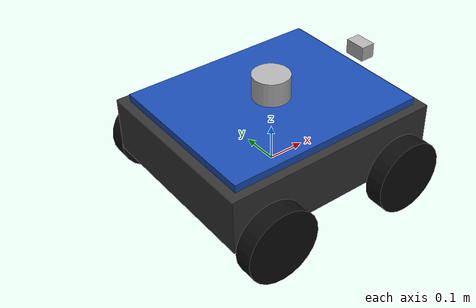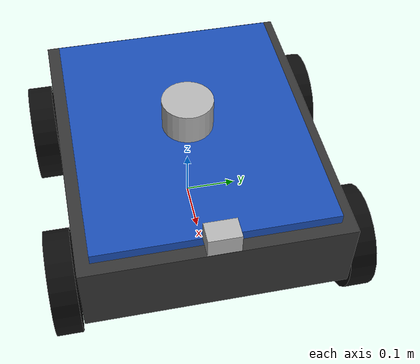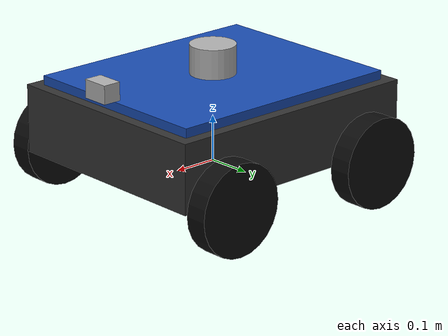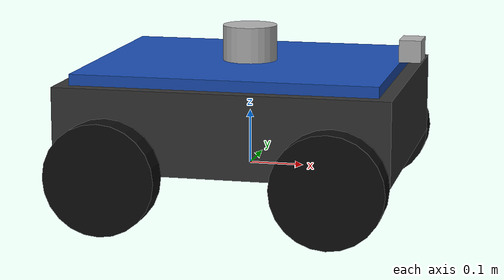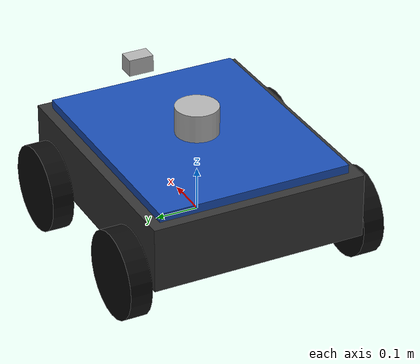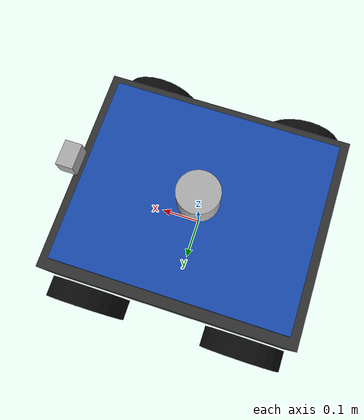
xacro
<?xml version="1.0"?>
<robot name="solar_agri_robot" xmlns:xacro="http://www.ros.org/wiki/xacro">

  <!-- ===== Robot Properties ===== -->
  <xacro:property name="base_length"  value="0.6" />
  <xacro:property name="base_width"   value="0.5" />
  <xacro:property name="base_height"  value="0.15" />
  <xacro:property name="wheel_radius" value="0.1" />
  <xacro:property name="wheel_width"  value="0.05" />
  <xacro:property name="wheel_x_off"  value="0.2" />
  <xacro:property name="wheel_y_off"  value="0.28" />
  <xacro:property name="wheel_base"   value="${2 * wheel_y_off}" />

  <!-- ===== Materials ===== -->
  <material name="dark_grey">
    <color rgba="0.2 0.2 0.2 1.0"/>
  </material>
  <material name="solar_blue">
    <color rgba="0.1 0.3 0.7 1.0"/>
  </material>
  <material name="rubber_black">
    <color rgba="0.05 0.05 0.05 1.0"/>
  </material>
  <material name="metal_silver">
    <color rgba="0.7 0.7 0.7 1.0"/>
  </material>

  <!-- ===== Base Link ===== -->
  <link name="base_footprint"/>

  <joint name="base_footprint_joint" type="fixed">
    <parent link="base_footprint"/>
    <child  link="base_link"/>
    <origin xyz="0 0 ${wheel_radius}" rpy="0 0 0"/>
  </joint>

  <link name="base_link">
    <visual>
      <geometry>
        <box size="${base_length} ${base_width} ${base_height}"/>
      </geometry>
      <material name="dark_grey"/>
    </visual>
    <collision>
      <geometry>
        <box size="${base_length} ${base_width} ${base_height}"/>
      </geometry>
    </collision>
    <inertial>
      <mass value="15.0"/>
      <inertia ixx="0.1" ixy="0.0" ixz="0.0"
               iyy="0.1" iyz="0.0" izz="0.2"/>
    </inertial>
  </link>

  <!-- ===== Solar Panel ===== -->
  <joint name="solar_panel_joint" type="fixed">
    <parent link="base_link"/>
    <child  link="solar_panel_link"/>
    <origin xyz="0 0 ${base_height/2 + 0.01}" rpy="0 0 0"/>
  </joint>

  <link name="solar_panel_link">
    <visual>
      <geometry>
        <box size="${base_length - 0.05} ${base_width - 0.05} 0.02"/>
      </geometry>
      <material name="solar_blue"/>
    </visual>
    <collision>
      <geometry>
        <box size="${base_length - 0.05} ${base_width - 0.05} 0.02"/>
      </geometry>
    </collision>
    <inertial>
      <mass value="2.0"/>
      <inertia ixx="0.05" ixy="0.0" ixz="0.0"
               iyy="0.05" iyz="0.0" izz="0.05"/>
    </inertial>
  </link>

  <!-- ===== Wheel Macro ===== -->
  <xacro:macro name="wheel" params="name x_off y_off">
    <joint name="${name}_joint" type="continuous">
      <parent link="base_link"/>
      <child  link="${name}_link"/>
      <origin xyz="${x_off} ${y_off} ${-base_height/2}" rpy="${pi/2} 0 0"/>
      <axis xyz="0 0 -1"/>
    </joint>
    <link name="${name}_link">
      <visual>
        <geometry>
          <cylinder radius="${wheel_radius}" length="${wheel_width}"/>
        </geometry>
        <material name="rubber_black"/>
      </visual>
      <collision>
        <geometry>
          <cylinder radius="${wheel_radius}" length="${wheel_width}"/>
        </geometry>
      </collision>
      <inertial>
        <mass value="1.0"/>
        <inertia ixx="0.01" ixy="0.0" ixz="0.0"
                 iyy="0.01" iyz="0.0" izz="0.02"/>
      </inertial>
    </link>
  </xacro:macro>

  <xacro:wheel name="front_left_wheel"  x_off=" ${wheel_x_off}" y_off=" ${wheel_y_off}"/>
  <xacro:wheel name="front_right_wheel" x_off=" ${wheel_x_off}" y_off="-${wheel_y_off}"/>
  <xacro:wheel name="rear_left_wheel"   x_off="-${wheel_x_off}" y_off=" ${wheel_y_off}"/>
  <xacro:wheel name="rear_right_wheel"  x_off="-${wheel_x_off}" y_off="-${wheel_y_off}"/>

  <!-- ===== Camera Link ===== -->
  <joint name="camera_joint" type="fixed">
    <parent link="base_link"/>
    <child  link="camera_link"/>
    <origin xyz="${base_length/2} 0 ${base_height/2 + 0.05}" rpy="0 0 0"/>
  </joint>

  <link name="camera_link">
    <visual>
      <geometry>
        <box size="0.04 0.06 0.04"/>
      </geometry>
      <material name="metal_silver"/>
    </visual>
    <inertial>
      <mass value="0.1"/>
      <inertia ixx="0.001" ixy="0.0" ixz="0.0"
               iyy="0.001" iyz="0.0" izz="0.001"/>
    </inertial>
  </link>

  <joint name="camera_optical_joint" type="fixed">
    <parent link="camera_link"/>
    <child  link="camera_optical_frame"/>
    <origin xyz="0 0 0" rpy="${-pi/2} 0 ${-pi/2}"/>
  </joint>

  <link name="camera_optical_frame"/>

  <!-- ===== LiDAR Link ===== -->
  <joint name="lidar_joint" type="fixed">
    <parent link="base_link"/>
    <child  link="lidar_link"/>
    <origin xyz="0 0 ${base_height/2 + 0.05}" rpy="0 0 0"/>
  </joint>

  <link name="lidar_link">
    <visual>
      <geometry>
        <cylinder radius="0.05" length="0.07"/>
      </geometry>
      <material name="metal_silver"/>
    </visual>
    <inertial>
      <mass value="0.3"/>
      <inertia ixx="0.001" ixy="0.0" ixz="0.0"
               iyy="0.001" iyz="0.0" izz="0.001"/>
    </inertial>
  </link>

  <!-- ===== IMU Link ===== -->
  <joint name="imu_joint" type="fixed">
    <parent link="base_link"/>
    <child  link="imu_link"/>
    <origin xyz="0 0 0" rpy="0 0 0"/>
  </joint>

  <link name="imu_link"/>

  <!-- ===== Gazebo Simulation Extensions ===== -->
  <!-- Colors/Friction -->
  <gazebo reference="base_link">
    <material>Gazebo/DarkGrey</material>
  </gazebo>
  <gazebo reference="solar_panel_link">
    <material>Gazebo/Blue</material>
  </gazebo>

  <xacro:macro name="gazebo_wheel" params="name">
    <gazebo reference="${name}_link">
      <material>Gazebo/FlatBlack</material>
      <mu1>1.0</mu1>
      <mu2>1.0</mu2>
      <kp>10000000.0</kp>
      <kd>1.0</kd>
    </gazebo>
  </xacro:macro>

  <xacro:gazebo_wheel name="front_left_wheel"/>
  <xacro:gazebo_wheel name="front_right_wheel"/>
  <xacro:gazebo_wheel name="rear_left_wheel"/>
  <xacro:gazebo_wheel name="rear_right_wheel"/>

  <!-- Differential Drive Plugin (Skid Steer for 4 wheels) -->
  <gazebo>
    <plugin name="skid_steer_drive" filename="libgazebo_ros_diff_drive.so">
      <ros>
        <namespace>/</namespace>
        <remapping>cmd_vel:=cmd_vel</remapping>
        <remapping>odom:=odom</remapping>
      </ros>

      <!-- Kinematics -->
      <num_wheel_pairs>2</num_wheel_pairs>
      <left_joint>front_left_wheel_joint</left_joint>
      <right_joint>front_right_wheel_joint</right_joint>
      <left_joint>rear_left_wheel_joint</left_joint>
      <right_joint>rear_right_wheel_joint</right_joint>
      <wheel_separation>${wheel_base}</wheel_separation>
      <wheel_diameter>${2 * wheel_radius}</wheel_diameter>

      <!-- Limits -->
      <max_wheel_torque>20</max_wheel_torque>
      <max_wheel_acceleration>1.0</max_wheel_acceleration>

      <!-- Output -->
      <publish_odom>true</publish_odom>
      <publish_odom_tf>true</publish_odom_tf>
      <publish_wheel_tf>true</publish_wheel_tf>
      <odometry_frame>odom</odometry_frame>
      <robot_base_frame>base_footprint</robot_base_frame>
    </plugin>

    <!-- Joint State Publisher for TF -->
    <plugin name="joint_state_publisher" filename="libgazebo_ros_joint_state_publisher.so">
      <update_rate>30</update_rate>
      <joint_name>front_left_wheel_joint</joint_name>
      <joint_name>front_right_wheel_joint</joint_name>
      <joint_name>rear_left_wheel_joint</joint_name>
      <joint_name>rear_right_wheel_joint</joint_name>
    </plugin>
  </gazebo>

  <!-- LiDAR Plugin -->
  <gazebo reference="lidar_link">
    <sensor type="ray" name="lidar_sensor">
      <pose>0 0 0 0 0 0</pose>
      <visualize>false</visualize>
      <update_rate>10.0</update_rate>
      <ray>
        <scan>
          <horizontal>
            <samples>360</samples>
            <resolution>1</resolution>
            <min_angle>-3.14159</min_angle>
            <max_angle>3.14159</max_angle>
          </horizontal>
        </scan>
        <range>
          <min>0.15</min>
          <max>10.0</max>
          <resolution>0.01</resolution>
        </range>
      </ray>
      <plugin name="lidar_controller" filename="libgazebo_ros_ray_sensor.so">
        <ros>
          <remapping>~/out:=scan</remapping>
        </ros>
        <output_type>sensor_msgs/LaserScan</output_type>
        <frame_name>lidar_link</frame_name>
      </plugin>
    </sensor>
  </gazebo>

</robot>
